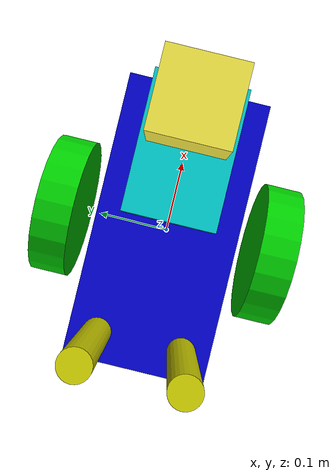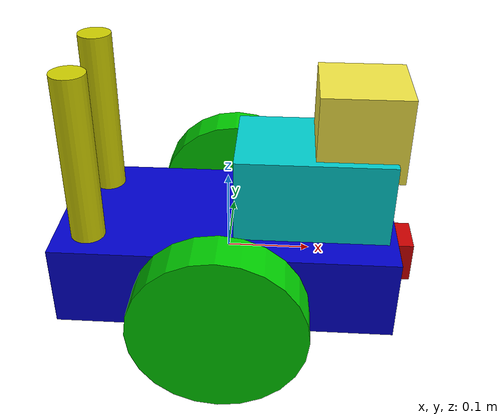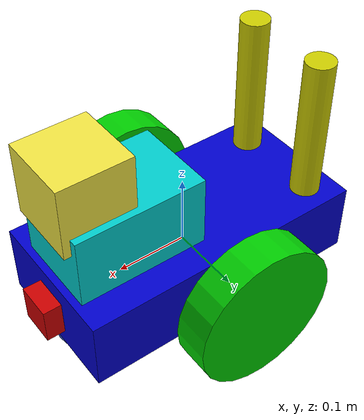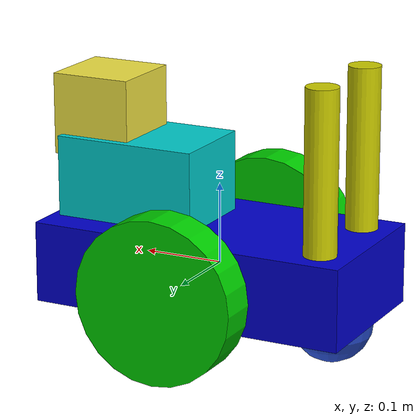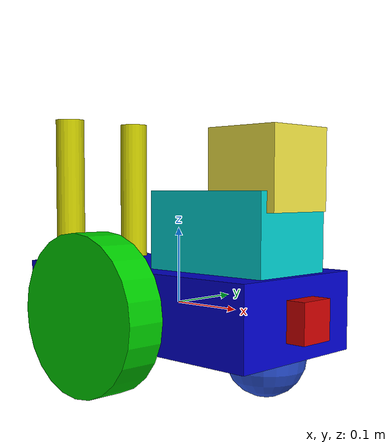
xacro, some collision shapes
<?xml version='1.0'?>

<robot name="li_bot" xmlns:xacro="http://www.ros.org/wiki/xacro">
  <xacro:include filename="$(find li_bot)/urdf/li_bot.gazebo" />

  <link name="robot_footprint"></link>

  <joint name="robot_footprint_joint" type="fixed">
    <origin xyz="0 0 0" rpy="0 0 0" />
    <parent link="robot_footprint"/>
    <child link="chassis" />
  </joint>

  <link name='chassis'>
    <pose>0 0 0.1 0 0 0</pose>

    <inertial>
      <mass value="15.0"/>
      <origin xyz="0.0 0 0" rpy=" 0 0 0"/>
      <inertia
          ixx="0.1" ixy="0" ixz="0"
          iyy="0.1" iyz="0"
          izz="0.1"
      />
    </inertial>

    <collision name='collision'>
      <origin xyz="0 0 0" rpy=" 0 0 0"/>
      <geometry>
        <box size=".4 .2 .1"/>
      </geometry>
    </collision>

    <visual name='chassis_visual'>
      <origin xyz="0 0 0" rpy=" 0 0 0"/>
      <geometry>
        <box size=".4 .2 .1"/>
      </geometry>
      <material name="blue">
        <color rgba="0 0 0.8 1"/>
      </material>
    </visual>

    <collision name='back_caster_collision'>
      <origin xyz="-0.15 0 -0.05" rpy=" 0 0 0"/>
      <geometry>
        <sphere radius="0.05"/>
      </geometry>
      <surface>
        <friction>
          <ode>
            <mu>0</mu>
            <mu2>0</mu2>
            <slip1>1.0</slip1>
            <slip2>1.0</slip2>
          </ode>
        </friction>
      </surface>
    </collision>

    <visual name='back_caster_visual'>
      <origin xyz="-0.15 0 -0.05" rpy=" 0 0 0"/>
      <geometry>
        <sphere radius="0.05"/>
      </geometry>
    </visual>

    <collision name='front_caster_collision'>
      <origin xyz="0.15 0 -0.05" rpy=" 0 0 0"/>
      <geometry>
        <sphere radius="0.05"/>
      </geometry>
      <surface>
        <friction>
          <ode>
            <mu>0</mu>
            <mu2>0</mu2>
            <slip1>1.0</slip1>
            <slip2>1.0</slip2>
          </ode>
        </friction>
      </surface>
    </collision>

    <visual name='front_caster_visual'>
      <origin xyz="0.15 0 -0.05" rpy=" 0 0 0"/>
      <geometry>
        <sphere radius="0.05"/>
      </geometry>
    </visual>

  </link>

  <joint type="fixed" name="topcube_joint">
    <origin xyz="0.0 0 0.0" rpy="0 0 0"/>
    <child link="topcube"/>
    <parent link="chassis"/>
  </joint>

  <link name='topcube'>
    <inertial>
      <mass value="0.6"/>
      <origin xyz="0.1 0.0 0.1" rpy=" 0 0 0"/>
      <inertia ixx="0.1" ixy="0" ixz="0" iyy="0.1" iyz="0" izz="0.1"/>
    </inertial>
    <collision name='topcube_collision'>
      <origin xyz="0.1 0.0 0.1" rpy=" 0 0 0"/>
      <geometry>
          <box size="0.18 0.12 0.1"/>
      </geometry>
    </collision>
    <visual name='topcube_visual'>
      <origin xyz="0.1 0.0 0.1" rpy=" 0 0 0"/>
      <geometry>
          <box size="0.18 0.12 0.1"/>
      </geometry>
      <material name="teal">
        <color rgba="0 0.8 0.8 1"/>
      </material>
    </visual>
  </link>

  <joint type="fixed" name="hokuyo_joint">
    <origin xyz="0.15 0 0.175" rpy="0 0 0"/>
    <child link="hokuyo"/>
    <parent link="topcube"/>
  </joint>

  <link name='hokuyo'>
    <inertial>
      <mass value="0.1"/>
      <origin xyz="0.0 0 0.0" rpy="0 0 0"/>
      <inertia ixx="1e-6" ixy="0" ixz="0" iyy="1e-6" iyz="0" izz="1e-6"/>
    </inertial>
    <collision name='hokuyo_collision'>
      <origin xyz="0.0 0 0.0" rpy="0 0 0"/>
      <geometry>
        <box size="0.1 0.1 0.1"/>
      </geometry>
    </collision>
    <visual name='hokuyo_visual'>
      <origin xyz="0.0 0 0.0" rpy="0 0 0"/>
      <geometry>
        <mesh filename="package://li_bot/meshes/hokuyo.dae"/>
      </geometry>
    </visual>
  </link>

  <joint type="fixed" name="leftpole_joint">
    <origin xyz="-0.16 -0.06 0.1" rpy="0 0 0"/>
    <child link="leftpole"/>
    <parent link="chassis"/>
  </joint>

  <link name='leftpole'>
    <inertial>
      <mass value="0.1"/>
      <origin xyz="0.0 0.0 0.0" rpy=" 0 0 0"/>
      <inertia ixx="1e-6" ixy="0" ixz="0" iyy="1e-6" iyz="0" izz="1e-6"/>
    </inertial>
    <collision name='leftpole_collision'>
      <origin xyz="0.0 0.0 0.0" rpy=" 0 0 0"/>
      <geometry>
          <cylinder radius="0.02" length="0.3"/>
      </geometry>
    </collision>
    <visual name='leftpole_visual'>
      <origin xyz="0.0 0.0 0.0" rpy=" 0 0 0"/>
      <geometry>
          <cylinder radius="0.02" length="0.3"/>
      </geometry>
      <material name="yellow">
        <color rgba="0.8 0.8 0.0 1"/>
      </material>
    </visual>
  </link>

  <joint type="fixed" name="rightpole_joint">
    <origin xyz="-0.16 0.06 0.1" rpy="0 0 0"/>
    <child link="rightpole"/>
    <parent link="chassis"/>
  </joint>

  <link name='rightpole'>
    <inertial>
      <mass value="0.1"/>
      <origin xyz="0.0 0.0 0.0" rpy=" 0 0 0"/>
      <inertia ixx="1e-6" ixy="0" ixz="0" iyy="1e-6" iyz="0" izz="1e-6"/>
    </inertial>
    <collision name='rightpole_collision'>
      <origin xyz="0.0 0.0 0.0" rpy=" 0 0 0"/>
      <geometry>
          <cylinder radius="0.02" length="0.3"/>
      </geometry>
    </collision>
    <visual name='rightpole_visual'>
      <origin xyz="0.0 0.0 0.0" rpy=" 0 0 0"/>
      <geometry>
          <cylinder radius="0.02" length="0.3"/>
      </geometry>
      <material name="yellow">
        <color rgba="0.8 0.8 0.0 1"/>
      </material>
    </visual>
  </link>

  <link name="left_wheel">
    <collision name='left_wheel_collision'>
      <origin xyz="0.0 0.0 0.0" rpy="0.0 1.5707 1.5707"/>
      <geometry>
        <cylinder radius="0.1" length="0.05"/>
      </geometry>
    </collision>
    <inertial>
      <mass value="5.0"/>
      <origin xyz="0.0 0 0" rpy="0.0 1.5707 1.5707"/>
      <inertia ixx="0.1" ixy="0" ixz="0" iyy="0.1" iyz="0" izz="0.1" />
    </inertial>
    <visual name='left_wheel_visual'>
     <origin xyz="0.0 0.0 0.0" rpy="0.0 1.5707 1.5707"/>
      <geometry>
        <cylinder radius="0.1" length="0.05"/>
      </geometry>
      <material name="green">
        <color rgba="0 0.8 0 1"/>
      </material>
    </visual>
  </link>

  <joint type="continuous" name="left_wheel_hinge">
    <origin xyz="0 0.15 0" rpy="0 0 0"/>
    <child link="left_wheel"/>
    <parent link="chassis"/>
    <axis xyz="0 1 0" rpy="0 0 0"/>
    <limit effort="10000" velocity="1000"/>
    <joint_properties damping="1.0" friction="1.0"/>
  </joint>

  <link name="right_wheel">
    <collision name='right_wheel_collision'>
      <origin xyz="0.0 0.0 0.0" rpy="0.0 1.5707 1.5707"/>
      <geometry>
        <cylinder radius="0.1" length="0.05"/>
      </geometry>
    </collision>
    <inertial>
      <mass value="5.0"/>
      <origin xyz="0.0 0.0 0.0" rpy="0.0 1.5707 1.5707"/>
      <inertia ixx="0.1" ixy="0" ixz="0" iyy="0.1" iyz="0" izz="0.1" />
    </inertial>
    <visual name='right_wheel_visual'>
      <origin xyz="0.0 0.0 0.0" rpy="0.0 1.5707 1.5707"/>
      <geometry>
        <cylinder radius="0.1" length="0.05"/>
      </geometry>
      <material name="green">
        <color rgba="0 0.8 0 1"/>
      </material>
    </visual>
  </link>

  <joint type="continuous" name="right_wheel_hinge">
    <origin xyz="0 -0.15 0" rpy="0 0 0"/>
    <child link="right_wheel"/>
    <parent link="chassis"/>
    <axis xyz="0 1 0" rpy="0 0 0"/>
    <limit effort="10000" velocity="1000"/>
    <joint_properties damping="1.0" friction="1.0"/>
  </joint>

  <link name="camera">
    <collision name='camera_collision'>
      <origin xyz="0.0 0.0 0.0" rpy=" 0.0 0.0 0.0"/>
      <geometry>
        <box size="0.05 0.05 0.05"/>
      </geometry>
    </collision>
    <inertial>
      <mass value="0.1"/>
      <origin xyz="0.0 0.0 0.0" rpy=" 0.0 0.0 0.0"/>
      <inertia ixx="1e-6" ixy="0" ixz="0" iyy="1e-6" iyz="0" izz="1e-6"/>
    </inertial>
    <visual name='camera_visual'>
      <origin xyz="0.0 0.0 0.0" rpy=" 0.0 0.0 0.0"/>
      <geometry>
        <box size="0.05 0.05 0.05"/>
      </geometry>
      <material name="red">
        <color rgba="0.8 0 0 1"/>
      </material>
    </visual>
  </link>

  <joint type="fixed" name="camera_joint">
    <origin xyz="0.2 0.0 0.0" rpy="0 0 0"/>
    <child link="camera"/>
    <parent link="chassis"/>
  </joint>

</robot>
